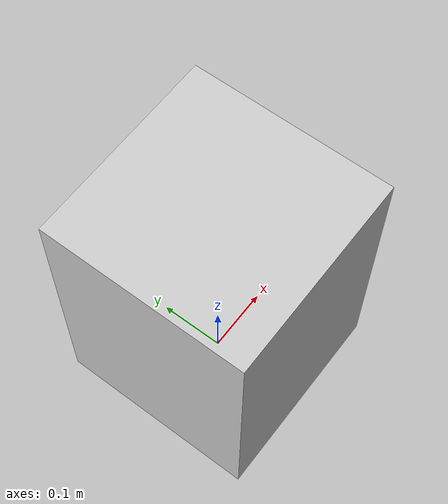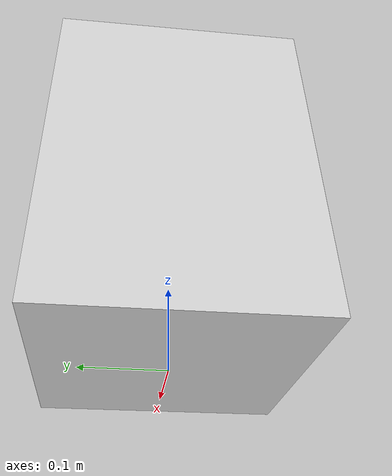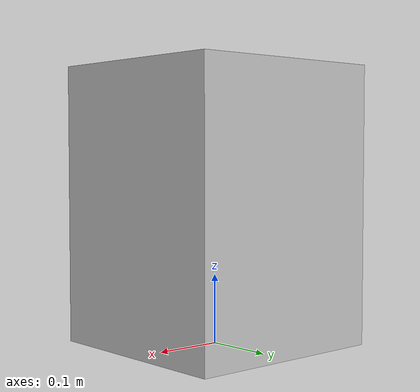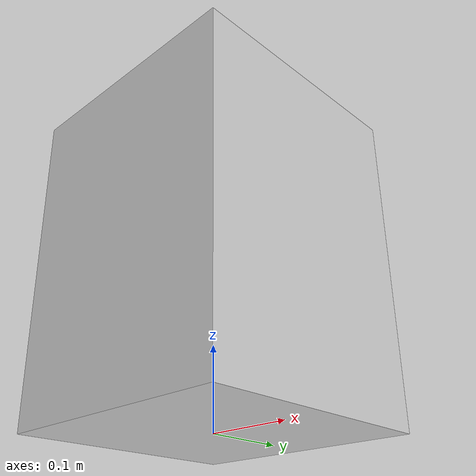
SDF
<?xml version="1.0"?>
<sdf version="1.6">
  <model name="rwc2015/trashbin">
    <link name="1_link">
      <collision name="1_col">
        <geometry>
          <box>
            <size>0.3 0.3 0.4</size>
          </box>
        </geometry>
      </collision>
      <visual name="1_vis">
        <geometry>
          <box>
            <size>0.3 0.3 0.4</size>
          </box>
        </geometry>
        <material>
          <ambient>0.8 0.8 0.8 1</ambient>
        </material>
      </visual>
      <pose>0.0 0.0 0.2 0 0 0</pose>
    </link>
    <link name="in_front_of">
      <virtual_volume name="in_front_of_vv">
        <geometry>
          <box>
            <size>0.8 0.7 1</size>
          </box>
        </geometry>
        <pose>-0.6 0.55 0.5 0 0 0</pose>
      </virtual_volume>
    </link>
    <static>true</static>
  </model>
</sdf>
